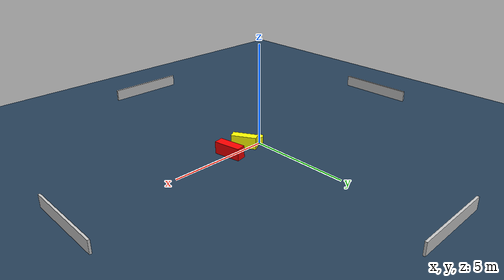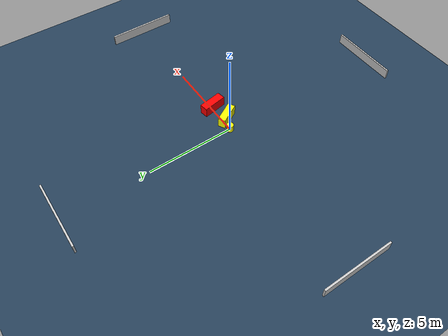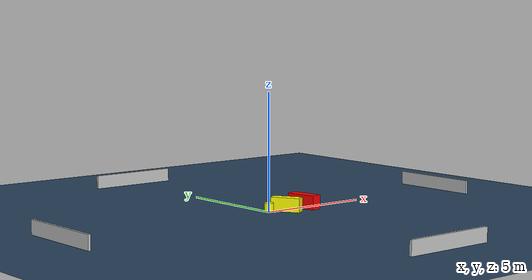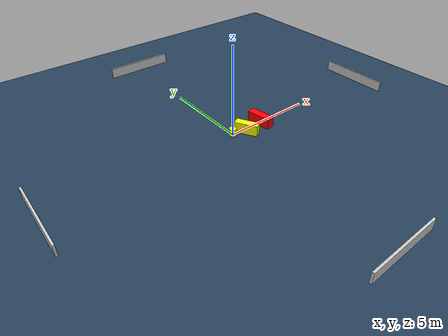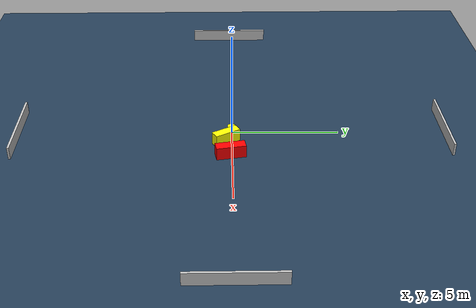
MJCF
<?xml version="1.0" ?>
<mujoco model="generated_environment">
  <option timestep="0.01" integrator="RK4" cone="elliptic"/>
  <default>
    <geom density="1"/>
  </default>
  <asset>
    <texture builtin="gradient" height="3072" name="skybox" rgb1="0.3 0.5 0.7" rgb2="0 0 0" type="skybox" width="512"/>
    <texture builtin="checker" height="300" name="groundplane" rgb1="0.2 0.3 0.4" rgb2="0.1 0.2 0.3" type="2d" width="300"/>
    <material name="groundplane" reflectance="0.2" texrepeat="5 5" texture="groundplane"/>
  </asset>
  <worldbody>
    <light dir="0 0 -1" directional="true" pos="0 0 1.5"/>
    <geom condim="3" friction="0.5 0.005 0.001" material="groundplane" name="floor" pos="0 0 0" size="0 0 0.05" type="plane"/>
    <body name="walls">
      <geom name="wall_1" condim="4" pos="-10.0 0.0 0.3" rgba="0.800000011920929 0.800000011920929 0.800000011920929 1.0" size="0.05 2.0 0.3" type="box"/>
      <geom name="wall_2" condim="4" pos="10.0 0.0 0.3" rgba="0.800000011920929 0.800000011920929 0.800000011920929 1.0" size="0.05 2.0 0.3" type="box"/>
      <geom name="wall_3" condim="4" pos="0.0 -10.0 0.3" rgba="0.800000011920929 0.800000011920929 0.800000011920929 1.0" size="2.0 0.05 0.3" type="box"/>
      <geom name="wall_4" condim="4" pos="0.0 10.0 0.3" rgba="0.800000011920929 0.800000011920929 0.800000011920929 1.0" size="2.0 0.05 0.3" type="box"/>
    </body>
    <body name="robot">
      <joint name="joint_x" type="slide" pos="0 0 0" axis="1 0 0"/>
      <joint name="joint_y" type="slide" pos="0 0 0" axis="0 1 0"/>
      <geom name="robot" type="cylinder" pos="0.0 0.0 0.2" size="0.2 0.2 0.0" mass="5.0" friction="1.0 0.005 0.0001" condim="4" rgba="1.0 1.0 0.0 1.0"/>
    </body>
    <body name="obstacle_1_movable">
      <geom name="obstacle_1_movable" condim="4" pos="0.7274507501247353 -0.269724672014015 0.3" euler="0 0 299.5463361507788" friction="0.0 0.005 0.001" rgba="1.0 1.0 0.0 1.0" size="0.6282309067254956 0.21060343660272543 0.3" type="box" mass="0.1"/>
      <joint type="free"/>
    </body>
    <body name="obstacle_2_static">
      <geom name="obstacle_2_static" condim="4" pos="1.862230587533376 -0.07729689006373991 0.3" euler="0 0 279.93581494209616" friction="0.0 0.005 0.001" rgba="1.0 0.0 0.0 1.0" size="0.6801453514822653 0.23529239642649957 0.3" type="box"/>
    </body>
  </worldbody>
  <actuator>
    <motor name="actuator_x" joint="joint_x" gear="1" ctrlrange="-1 1"/>
    <motor name="actuator_y" joint="joint_y" gear="1" ctrlrange="-1 1"/>
  </actuator>
</mujoco>
